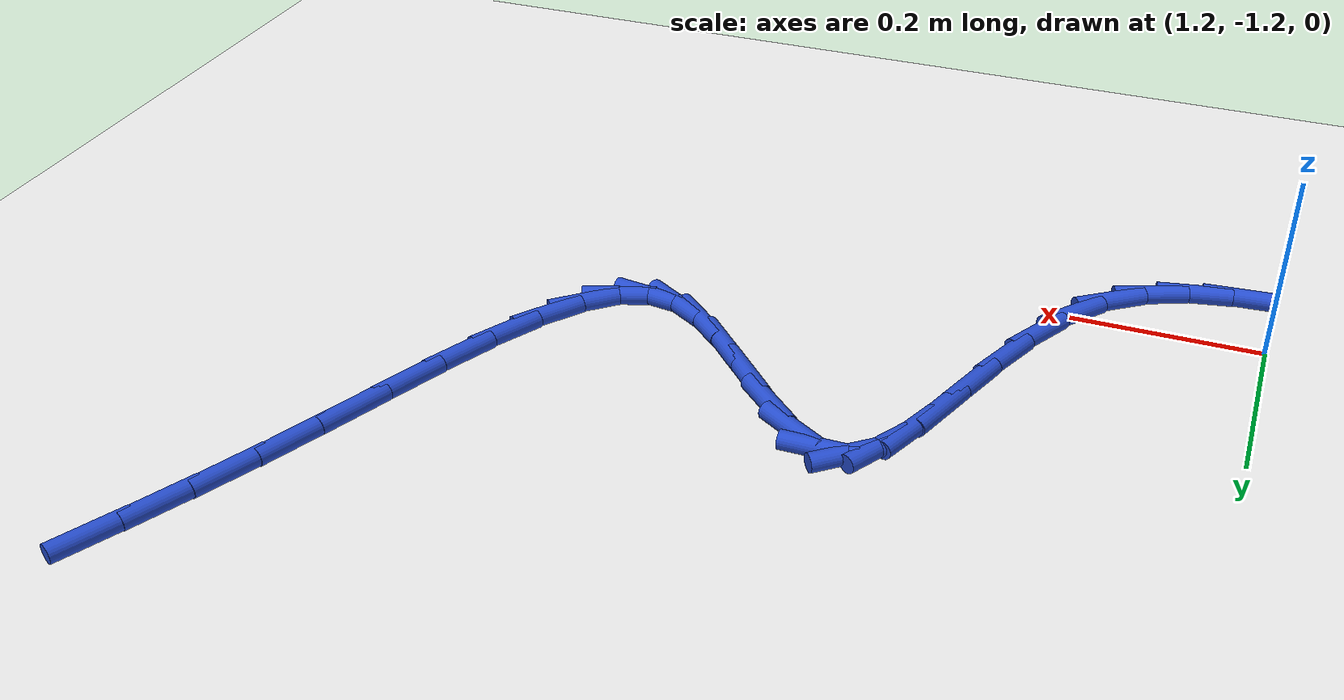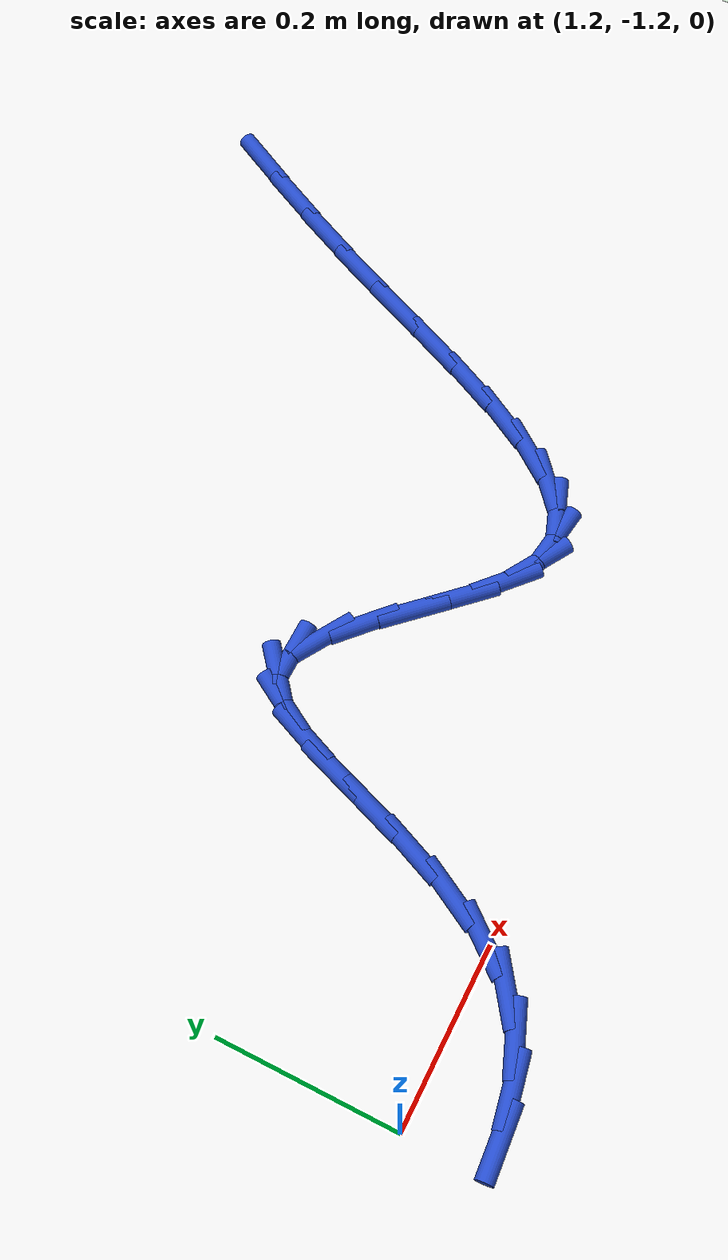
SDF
<sdf version="1.6">
 <world name="default">
  <model name="ground_plane">
   <static>1</static>
   <link name="link">
    <collision name="collision">
     <geometry><plane><normal>0 0 1</normal><size>100 100</size></plane></geometry>
     <surface><friction><ode><mu>100</mu><mu2>50</mu2></ode></friction></surface>
    </collision>
    <visual name="visual">
     <cast_shadows>0</cast_shadows>
     <geometry><plane><normal>0 0 1</normal><size>100 100</size></plane></geometry>
     <material>
      <script><uri>file://media/materials/scripts/gazebo.material</uri><name>Gazebo/WhiteGlow</name></script>
     </material>
    </visual>
   </link>
  </model>
  <model name="line">
   <link name="link_109">
    <pose>2.14555268366236 -0.5415287627867592 0.01 0 1.57 1.078260555567576</pose>
    <collision name="collision">
     <geometry><cylinder><radius>0.01</radius><length>0.08</length></cylinder></geometry>
    </collision>
    <visual name="visual">
     <material>
      <script><name>Gazebo/Blue</name><uri>file://media/materials/scripts/gazebo.material</uri></script>
     </material>
     <geometry><cylinder><radius>0.01</radius><length>0.08</length></cylinder></geometry>
    </visual>
   </link>
   <link name="link_110">
    <pose>2.113951699026365 -0.6004144390005566 0.01 0 1.57 1.098554733341585</pose>
    <collision name="collision">
     <geometry><cylinder><radius>0.01</radius><length>0.08</length></cylinder></geometry>
    </collision>
    <visual name="visual">
     <material>
      <script><name>Gazebo/Blue</name><uri>file://media/materials/scripts/gazebo.material</uri></script>
     </material>
     <geometry><cylinder><radius>0.01</radius><length>0.08</length></cylinder></geometry>
    </visual>
   </link>
   <link name="link_111">
    <pose>2.083234763477018 -0.6605506774891169 0.01 0 1.57 1.123220602129875</pose>
    <collision name="collision">
     <geometry><cylinder><radius>0.01</radius><length>0.08</length></cylinder></geometry>
    </collision>
    <visual name="visual">
     <material>
      <script><name>Gazebo/Blue</name><uri>file://media/materials/scripts/gazebo.material</uri></script>
     </material>
     <geometry><cylinder><radius>0.01</radius><length>0.08</length></cylinder></geometry>
    </visual>
   </link>
   <link name="link_112">
    <pose>2.0537792098603647 -0.7219076457645501 0.01 0 1.57 1.1471340031996757</pose>
    <collision name="collision">
     <geometry><cylinder><radius>0.01</radius><length>0.08</length></cylinder></geometry>
    </collision>
    <visual name="visual">
     <material>
      <script><name>Gazebo/Blue</name><uri>file://media/materials/scripts/gazebo.material</uri></script>
     </material>
     <geometry><cylinder><radius>0.01</radius><length>0.08</length></cylinder></geometry>
    </visual>
   </link>
   <link name="link_113">
    <pose>2.025772762112949 -0.7840099928776021 0.01 0 1.57 1.1550446038133468</pose>
    <collision name="collision">
     <geometry><cylinder><radius>0.01</radius><length>0.08</length></cylinder></geometry>
    </collision>
    <visual name="visual">
     <material>
      <script><name>Gazebo/Blue</name><uri>file://media/materials/scripts/gazebo.material</uri></script>
     </material>
     <geometry><cylinder><radius>0.01</radius><length>0.08</length></cylinder></geometry>
    </visual>
   </link>
   <link name="link_114">
    <pose>1.9988303633587383 -0.8450365217002112 0.01 0 1.57 1.1432570683583123</pose>
    <collision name="collision">
     <geometry><cylinder><radius>0.01</radius><length>0.08</length></cylinder></geometry>
    </collision>
    <visual name="visual">
     <material>
      <script><name>Gazebo/Blue</name><uri>file://media/materials/scripts/gazebo.material</uri></script>
     </material>
     <geometry><cylinder><radius>0.01</radius><length>0.08</length></cylinder></geometry>
    </visual>
   </link>
   <link name="link_115">
    <pose>1.9724592222374384 -0.9029128945647211 0.01 0 1.57 1.1076542750803888</pose>
    <collision name="collision">
     <geometry><cylinder><radius>0.01</radius><length>0.08</length></cylinder></geometry>
    </collision>
    <visual name="visual">
     <material>
      <script><name>Gazebo/Blue</name><uri>file://media/materials/scripts/gazebo.material</uri></script>
     </material>
     <geometry><cylinder><radius>0.01</radius><length>0.08</length></cylinder></geometry>
    </visual>
   </link>
   <link name="link_116">
    <pose>1.946166547388756 -0.955564773803473 0.01 0 1.57 1.0386016568072234</pose>
    <collision name="collision">
     <geometry><cylinder><radius>0.01</radius><length>0.08</length></cylinder></geometry>
    </collision>
    <visual name="visual">
     <material>
      <script><name>Gazebo/Blue</name><uri>file://media/materials/scripts/gazebo.material</uri></script>
     </material>
     <geometry><cylinder><radius>0.01</radius><length>0.08</length></cylinder></geometry>
    </visual>
   </link>
   <link name="link_117">
    <pose>1.9194595474523983 -1.0009178217488113 0.01 0 1.57 0.916196679701417</pose>
    <collision name="collision">
     <geometry><cylinder><radius>0.01</radius><length>0.08</length></cylinder></geometry>
    </collision>
    <visual name="visual">
     <material>
      <script><name>Gazebo/Blue</name><uri>file://media/materials/scripts/gazebo.material</uri></script>
     </material>
     <geometry><cylinder><radius>0.01</radius><length>0.08</length></cylinder></geometry>
    </visual>
   </link>
   <link name="link_118">
    <pose>1.8918454310680717 -1.0368977007330793 0.01 0 1.57 0.7018961716490691</pose>
    <collision name="collision">
     <geometry><cylinder><radius>0.01</radius><length>0.08</length></cylinder></geometry>
    </collision>
    <visual name="visual">
     <material>
      <script><name>Gazebo/Blue</name><uri>file://media/materials/scripts/gazebo.material</uri></script>
     </material>
     <geometry><cylinder><radius>0.01</radius><length>0.08</length></cylinder></geometry>
    </visual>
   </link>
   <link name="link_119">
    <pose>1.8628314068754832 -1.0614300730886201 0.01 0 1.57 0.3422320871012184</pose>
    <collision name="collision">
     <geometry><cylinder><radius>0.01</radius><length>0.08</length></cylinder></geometry>
    </collision>
    <visual name="visual">
     <material>
      <script><name>Gazebo/Blue</name><uri>file://media/materials/scripts/gazebo.material</uri></script>
     </material>
     <geometry><cylinder><radius>0.01</radius><length>0.08</length></cylinder></geometry>
    </visual>
   </link>
   <link name="link_120">
    <pose>1.8319246835143388 -1.0724406011477774 0.01 0 1.57 -0.13687824062913706</pose>
    <collision name="collision">
     <geometry><cylinder><radius>0.01</radius><length>0.08</length></cylinder></geometry>
    </collision>
    <visual name="visual">
     <material>
      <script><name>Gazebo/Blue</name><uri>file://media/materials/scripts/gazebo.material</uri></script>
     </material>
     <geometry><cylinder><radius>0.01</radius><length>0.08</length></cylinder></geometry>
    </visual>
   </link>
   <link name="link_121">
    <pose>1.7986324696243465 -1.0678549472428938 0.01 0 1.57 -0.5374155892705942</pose>
    <collision name="collision">
     <geometry><cylinder><radius>0.01</radius><length>0.08</length></cylinder></geometry>
    </collision>
    <visual name="visual">
     <material>
      <script><name>Gazebo/Blue</name><uri>file://media/materials/scripts/gazebo.material</uri></script>
     </material>
     <geometry><cylinder><radius>0.01</radius><length>0.08</length></cylinder></geometry>
    </visual>
   </link>
   <link name="link_122">
    <pose>1.7626301919642393 -1.04640039726153 0.01 0 1.57 -0.732938095502387</pose>
    <collision name="collision">
     <geometry><cylinder><radius>0.01</radius><length>0.08</length></cylinder></geometry>
    </collision>
    <visual name="visual">
     <material>
      <script><name>Gazebo/Blue</name><uri>file://media/materials/scripts/gazebo.material</uri></script>
     </material>
     <geometry><cylinder><radius>0.01</radius><length>0.08</length></cylinder></geometry>
    </visual>
   </link>
   <link name="link_123">
    <pose>1.7247456866842241 -1.0122959077792943 0.01 0 1.57 -0.8079882496860695</pose>
    <collision name="collision">
     <geometry><cylinder><radius>0.01</radius><length>0.08</length></cylinder></geometry>
    </collision>
    <visual name="visual">
     <material>
      <script><name>Gazebo/Blue</name><uri>file://media/materials/scripts/gazebo.material</uri></script>
     </material>
     <geometry><cylinder><radius>0.01</radius><length>0.08</length></cylinder></geometry>
    </visual>
   </link>
   <link name="link_124">
    <pose>1.6862897863441344 -0.9720620976498151 0.01 0 1.57 -0.8127268406990641</pose>
    <collision name="collision">
     <geometry><cylinder><radius>0.01</radius><length>0.08</length></cylinder></geometry>
    </collision>
    <visual name="visual">
     <material>
      <script><name>Gazebo/Blue</name><uri>file://media/materials/scripts/gazebo.material</uri></script>
     </material>
     <geometry><cylinder><radius>0.01</radius><length>0.08</length></cylinder></geometry>
    </visual>
   </link>
   <link name="link_125">
    <pose>1.6485749691288327 -0.9322274277581946 0.01 0 1.57 -0.7452526969877334</pose>
    <collision name="collision">
     <geometry><cylinder><radius>0.01</radius><length>0.08</length></cylinder></geometry>
    </collision>
    <visual name="visual">
     <material>
      <script><name>Gazebo/Blue</name><uri>file://media/materials/scripts/gazebo.material</uri></script>
     </material>
     <geometry><cylinder><radius>0.01</radius><length>0.08</length></cylinder></geometry>
    </visual>
   </link>
   <link name="link_126">
    <pose>1.6129137132231783 -0.8993203589895341 0.01 0 1.57 -0.5420998247497826</pose>
    <collision name="collision">
     <geometry><cylinder><radius>0.01</radius><length>0.08</length></cylinder></geometry>
    </collision>
    <visual name="visual">
     <material>
      <script><name>Gazebo/Blue</name><uri>file://media/materials/scripts/gazebo.material</uri></script>
     </material>
     <geometry><cylinder><radius>0.01</radius><length>0.08</length></cylinder></geometry>
    </visual>
   </link>
   <link name="link_127">
    <pose>1.5806184968120331 -0.8798693522289371 0.01 0 1.57 -0.0006223952568433225</pose>
    <collision name="collision">
     <geometry><cylinder><radius>0.01</radius><length>0.08</length></cylinder></geometry>
    </collision>
    <visual name="visual">
     <material>
      <script><name>Gazebo/Blue</name><uri>file://media/materials/scripts/gazebo.material</uri></script>
     </material>
     <geometry><cylinder><radius>0.01</radius><length>0.08</length></cylinder></geometry>
    </visual>
   </link>
   <link name="link_128">
    <pose>1.5528622764383955 -0.879852076886798 0.01 0 1.57 0.6840323974035035</pose>
    <collision name="collision">
     <geometry><cylinder><radius>0.01</radius><length>0.08</length></cylinder></geometry>
    </collision>
    <visual name="visual">
     <material>
      <script><name>Gazebo/Blue</name><uri>file://media/materials/scripts/gazebo.material</uri></script>
     </material>
     <geometry><cylinder><radius>0.01</radius><length>0.08</length></cylinder></geometry>
    </visual>
   </link>
   <link name="link_129">
    <pose>1.529260130699444 -0.8990961465130834 0.01 0 1.57 1.0278389985260568</pose>
    <collision name="collision">
     <geometry><cylinder><radius>0.01</radius><length>0.08</length></cylinder></geometry>
    </collision>
    <visual name="visual">
     <material>
      <script><name>Gazebo/Blue</name><uri>file://media/materials/scripts/gazebo.material</uri></script>
     </material>
     <geometry><cylinder><radius>0.01</radius><length>0.08</length></cylinder></geometry>
    </visual>
   </link>
   <link name="link_130">
    <pose>1.5084516611717207 -0.9335782708154067 0.01 0 1.57 1.1690347729938275</pose>
    <collision name="collision">
     <geometry><cylinder><radius>0.01</radius><length>0.08</length></cylinder></geometry>
    </collision>
    <visual name="visual">
     <material>
      <script><name>Gazebo/Blue</name><uri>file://media/materials/scripts/gazebo.material</uri></script>
     </material>
     <geometry><cylinder><radius>0.01</radius><length>0.08</length></cylinder></geometry>
    </visual>
   </link>
   <link name="link_131">
    <pose>1.4890614912904836 -0.9792160300902266 0.01 0 1.57 1.2190189606373147</pose>
    <collision name="collision">
     <geometry><cylinder><radius>0.01</radius><length>0.08</length></cylinder></geometry>
    </collision>
    <visual name="visual">
     <material>
      <script><name>Gazebo/Blue</name><uri>file://media/materials/scripts/gazebo.material</uri></script>
     </material>
     <geometry><cylinder><radius>0.01</radius><length>0.08</length></cylinder></geometry>
    </visual>
   </link>
   <link name="link_132">
    <pose>1.4697142444909903 -1.0319270046339974 0.01 0 1.57 1.215310776889027</pose>
    <collision name="collision">
     <geometry><cylinder><radius>0.01</radius><length>0.08</length></cylinder></geometry>
    </collision>
    <visual name="visual">
     <material>
      <script><name>Gazebo/Blue</name><uri>file://media/materials/scripts/gazebo.material</uri></script>
     </material>
     <geometry><cylinder><radius>0.01</radius><length>0.08</length></cylinder></geometry>
    </visual>
   </link>
   <link name="link_133">
    <pose>1.449034544208498 -1.0876287747431777 0.01 0 1.57 1.1661647457543376</pose>
    <collision name="collision">
     <geometry><cylinder><radius>0.01</radius><length>0.08</length></cylinder></geometry>
    </collision>
    <visual name="visual">
     <material>
      <script><name>Gazebo/Blue</name><uri>file://media/materials/scripts/gazebo.material</uri></script>
     </material>
     <geometry><cylinder><radius>0.01</radius><length>0.08</length></cylinder></geometry>
    </visual>
   </link>
   <link name="link_134">
    <pose>1.4256470138782642 -1.1422389207142243 0.01 0 1.57 1.0636014392672914</pose>
    <collision name="collision">
     <geometry><cylinder><radius>0.01</radius><length>0.08</length></cylinder></geometry>
    </collision>
    <visual name="visual">
     <material>
      <script><name>Gazebo/Blue</name><uri>file://media/materials/scripts/gazebo.material</uri></script>
     </material>
     <geometry><cylinder><radius>0.01</radius><length>0.08</length></cylinder></geometry>
    </visual>
   </link>
   <link name="link_135">
    <pose>1.398176276935546 -1.1916750228435942 0.01 0 1.57 0.884246380713244</pose>
    <collision name="collision">
     <geometry><cylinder><radius>0.01</radius><length>0.08</length></cylinder></geometry>
    </collision>
    <visual name="visual">
     <material>
      <script><name>Gazebo/Blue</name><uri>file://media/materials/scripts/gazebo.material</uri></script>
     </material>
     <geometry><cylinder><radius>0.01</radius><length>0.08</length></cylinder></geometry>
    </visual>
   </link>
   <link name="link_136">
    <pose>1.365246957280138 -1.2318546624034101 0.01 0 1.57 0.6196751930981987</pose>
    <collision name="collision">
     <geometry><cylinder><radius>0.01</radius><length>0.08</length></cylinder></geometry>
    </collision>
    <visual name="visual">
     <material>
      <script><name>Gazebo/Blue</name><uri>file://media/materials/scripts/gazebo.material</uri></script>
     </material>
     <geometry><cylinder><radius>0.01</radius><length>0.08</length></cylinder></geometry>
    </visual>
   </link>
   <link name="link_137">
    <pose>1.3260264171405993 -1.2598353319226294 0.01 0 1.57 0.3722083576840895</pose>
    <collision name="collision">
     <geometry><cylinder><radius>0.01</radius><length>0.08</length></cylinder></geometry>
    </collision>
    <visual name="visual">
     <material>
      <script><name>Gazebo/Blue</name><uri>file://media/materials/scripts/gazebo.material</uri></script>
     </material>
     <geometry><cylinder><radius>0.01</radius><length>0.08</length></cylinder></geometry>
    </visual>
   </link>
   <link name="link_138">
    <pose>1.2817914382148854 -1.2771049296544896 0.01 0 1.57 0.189900082297855</pose>
    <collision name="collision">
     <geometry><cylinder><radius>0.01</radius><length>0.08</length></cylinder></geometry>
    </collision>
    <visual name="visual">
     <material>
      <script><name>Gazebo/Blue</name><uri>file://media/materials/scripts/gazebo.material</uri></script>
     </material>
     <geometry><cylinder><radius>0.01</radius><length>0.08</length></cylinder></geometry>
    </visual>
   </link>
   <link name="link_139">
    <pose>1.234331207210049 -1.2862275561526253 0.01 0 1.57 0.07226602767295257</pose>
    <collision name="collision">
     <geometry><cylinder><radius>0.01</radius><length>0.08</length></cylinder></geometry>
    </collision>
    <visual name="visual">
     <material>
      <script><name>Gazebo/Blue</name><uri>file://media/materials/scripts/gazebo.material</uri></script>
     </material>
     <geometry><cylinder><radius>0.01</radius><length>0.08</length></cylinder></geometry>
    </visual>
   </link>
  </model>
 </world>
</sdf>
